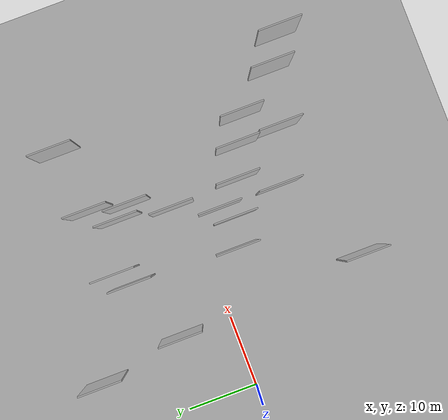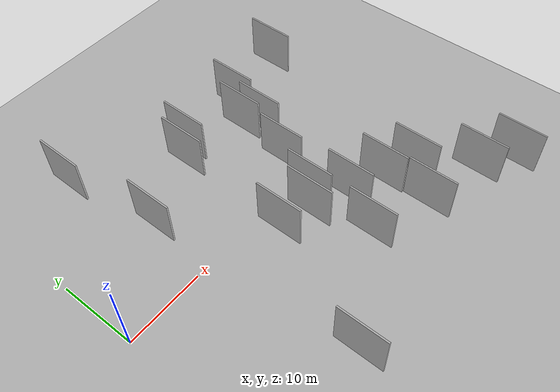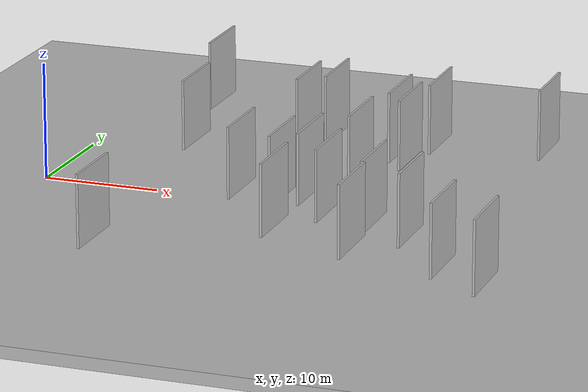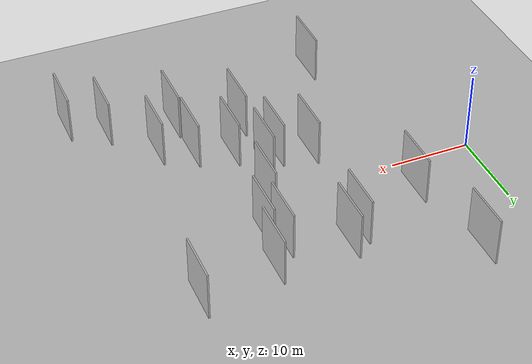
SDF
<?xml version="1.0" encoding="utf-8"?>

<sdf version="1.6">

   <world name="default">

      <gui fullscreen="0">

         <camera name="user_camera">

            <pose>-15 0 4.57585 0 0 0</pose>

            <view_controller>orbit</view_controller>

         </camera>

      </gui>

      <scene>

         <sky>

           <clouds>

             <speed>12</speed>

           </clouds>

         </sky>

         <ambient>0.4 0.4 0.4 1</ambient>

         <background>0.7 0.7 0.7 1</background>

         <shadows>1</shadows>

      </scene>

      <gravity>0 0 -9.8066</gravity>

      <magnetic_field>6e-06 2.3e-05 -4.2e-05</magnetic_field>

      <physics default="0" name="default_physics" type="ode">

         <ode>

            <solver>

               <type>quick</type>

               <iters>10</iters>

               <sor>1.0</sor>

               <use_dynamic_moi_rescaling>0</use_dynamic_moi_rescaling>

            </solver>

            <constraints>

               <cfm>0</cfm>

               <erp>0.2</erp>

               <contact_max_correcting_vel>100</contact_max_correcting_vel>

               <contact_surface_layer>0.001</contact_surface_layer>

            </constraints>

         </ode>

         <max_step_size>0.004</max_step_size>

         <real_time_factor>1</real_time_factor>

         <real_time_update_rate>250</real_time_update_rate>

      </physics>

      <light name="sun" type="directional">

         <cast_shadows>1</cast_shadows>

         <pose>0 0 10 0 0 0</pose>

         <diffuse>0.8 0.8 0.8 1</diffuse>

         <specular>0.2 0.2 0.2 1</specular>

         <attenuation>

            <range>1000</range>

            <constant>0.9</constant>

            <linear>0.01</linear>

            <quadratic>0.001</quadratic>

         </attenuation>

         <direction>-0.5 0.1 -0.9</direction>

      </light>

      <include>

         <name>ground_plane_1</name>

         <uri>model://HANNAS_ground_plane</uri>

         <pose>0 0 0  0 0 0</pose>

      </include>

      <include>

         <name>ground_plane_2</name>

         <uri>model://HANNAS_ground_plane</uri>

         <pose>100 0 0  0 0 0</pose>

      </include>

      <model name="HANNAS_wall_1">

         <static>1</static>

         <pose frame="">32.0203 -8.9348 2.5 0.000000 0.000000 1.570796</pose>

         <link name="link">

            <pose frame="">0 0 3.00 0 0 0</pose>

            <collision name="collision">

               <geometry>

                  <box>

                     <size>6.00 0.2 6.00</size>

                  </box>

               </geometry>

               <max_contacts>10</max_contacts>

               <surface>

                  <contact>

                     <ode/>

                  </contact>

                  <bounce/>

                  <friction>

                     <torsional>

                        <ode/>

                     </torsional>

                     <ode/>

                  </friction>

               </surface>

            </collision>

            <visual name="visual">

               <cast_shadows>0</cast_shadows>

               <geometry>

                  <box>

                     <size>6.00 0.2 6.00</size>

                  </box>

               </geometry>

               <material>

                  <script>

                     <uri>model://HANNAS_wall/materials/scripts</uri>

                     <uri>model://HANNAS_wall/materials/textures</uri>

                     <name>vrc/HANNAS_wall</name>

                  </script>

               </material>

            </visual>

            <self_collide>0</self_collide>

            <enable_wind>0</enable_wind>

            <kinematic>0</kinematic>

         </link>

      </model>

      <model name="HANNAS_wall_2">

         <static>1</static>

         <pose frame="">19.1158 -4.1282 2.5 0.000000 0.000000 1.570796</pose>

         <link name="link">

            <pose frame="">0 0 3.00 0 0 0</pose>

            <collision name="collision">

               <geometry>

                  <box>

                     <size>6.00 0.2 6.00</size>

                  </box>

               </geometry>

               <max_contacts>10</max_contacts>

               <surface>

                  <contact>

                     <ode/>

                  </contact>

                  <bounce/>

                  <friction>

                     <torsional>

                        <ode/>

                     </torsional>

                     <ode/>

                  </friction>

               </surface>

            </collision>

            <visual name="visual">

               <cast_shadows>0</cast_shadows>

               <geometry>

                  <box>

                     <size>6.00 0.2 6.00</size>

                  </box>

               </geometry>

               <material>

                  <script>

                     <uri>model://HANNAS_wall/materials/scripts</uri>

                     <uri>model://HANNAS_wall/materials/textures</uri>

                     <name>vrc/HANNAS_wall</name>

                  </script>

               </material>

            </visual>

            <self_collide>0</self_collide>

            <enable_wind>0</enable_wind>

            <kinematic>0</kinematic>

         </link>

      </model>

      <model name="HANNAS_wall_3">

         <static>1</static>

         <pose frame="">8.6810 18.6490 2.5 0.000000 0.000000 1.570796</pose>

         <link name="link">

            <pose frame="">0 0 3.00 0 0 0</pose>

            <collision name="collision">

               <geometry>

                  <box>

                     <size>6.00 0.2 6.00</size>

                  </box>

               </geometry>

               <max_contacts>10</max_contacts>

               <surface>

                  <contact>

                     <ode/>

                  </contact>

                  <bounce/>

                  <friction>

                     <torsional>

                        <ode/>

                     </torsional>

                     <ode/>

                  </friction>

               </surface>

            </collision>

            <visual name="visual">

               <cast_shadows>0</cast_shadows>

               <geometry>

                  <box>

                     <size>6.00 0.2 6.00</size>

                  </box>

               </geometry>

               <material>

                  <script>

                     <uri>model://HANNAS_wall/materials/scripts</uri>

                     <uri>model://HANNAS_wall/materials/textures</uri>

                     <name>vrc/HANNAS_wall</name>

                  </script>

               </material>

            </visual>

            <self_collide>0</self_collide>

            <enable_wind>0</enable_wind>

            <kinematic>0</kinematic>

         </link>

      </model>

      <model name="HANNAS_wall_4">

         <static>1</static>

         <pose frame="">44.3298 -19.4396 2.5 0.000000 0.000000 1.570796</pose>

         <link name="link">

            <pose frame="">0 0 3.00 0 0 0</pose>

            <collision name="collision">

               <geometry>

                  <box>

                     <size>6.00 0.2 6.00</size>

                  </box>

               </geometry>

               <max_contacts>10</max_contacts>

               <surface>

                  <contact>

                     <ode/>

                  </contact>

                  <bounce/>

                  <friction>

                     <torsional>

                        <ode/>

                     </torsional>

                     <ode/>

                  </friction>

               </surface>

            </collision>

            <visual name="visual">

               <cast_shadows>0</cast_shadows>

               <geometry>

                  <box>

                     <size>6.00 0.2 6.00</size>

                  </box>

               </geometry>

               <material>

                  <script>

                     <uri>model://HANNAS_wall/materials/scripts</uri>

                     <uri>model://HANNAS_wall/materials/textures</uri>

                     <name>vrc/HANNAS_wall</name>

                  </script>

               </material>

            </visual>

            <self_collide>0</self_collide>

            <enable_wind>0</enable_wind>

            <kinematic>0</kinematic>

         </link>

      </model>

      <model name="HANNAS_wall_5">

         <static>1</static>

         <pose frame="">24.9027 -12.1965 2.5 0.000000 0.000000 1.570796</pose>

         <link name="link">

            <pose frame="">0 0 3.00 0 0 0</pose>

            <collision name="collision">

               <geometry>

                  <box>

                     <size>6.00 0.2 6.00</size>

                  </box>

               </geometry>

               <max_contacts>10</max_contacts>

               <surface>

                  <contact>

                     <ode/>

                  </contact>

                  <bounce/>

                  <friction>

                     <torsional>

                        <ode/>

                     </torsional>

                     <ode/>

                  </friction>

               </surface>

            </collision>

            <visual name="visual">

               <cast_shadows>0</cast_shadows>

               <geometry>

                  <box>

                     <size>6.00 0.2 6.00</size>

                  </box>

               </geometry>

               <material>

                  <script>

                     <uri>model://HANNAS_wall/materials/scripts</uri>

                     <uri>model://HANNAS_wall/materials/textures</uri>

                     <name>vrc/HANNAS_wall</name>

                  </script>

               </material>

            </visual>

            <self_collide>0</self_collide>

            <enable_wind>0</enable_wind>

            <kinematic>0</kinematic>

         </link>

      </model>

      <model name="HANNAS_wall_6">

         <static>1</static>

         <pose frame="">39.6799 14.1153 2.5 0.000000 0.000000 1.570796</pose>

         <link name="link">

            <pose frame="">0 0 3.00 0 0 0</pose>

            <collision name="collision">

               <geometry>

                  <box>

                     <size>6.00 0.2 6.00</size>

                  </box>

               </geometry>

               <max_contacts>10</max_contacts>

               <surface>

                  <contact>

                     <ode/>

                  </contact>

                  <bounce/>

                  <friction>

                     <torsional>

                        <ode/>

                     </torsional>

                     <ode/>

                  </friction>

               </surface>

            </collision>

            <visual name="visual">

               <cast_shadows>0</cast_shadows>

               <geometry>

                  <box>

                     <size>6.00 0.2 6.00</size>

                  </box>

               </geometry>

               <material>

                  <script>

                     <uri>model://HANNAS_wall/materials/scripts</uri>

                     <uri>model://HANNAS_wall/materials/textures</uri>

                     <name>vrc/HANNAS_wall</name>

                  </script>

               </material>

            </visual>

            <self_collide>0</self_collide>

            <enable_wind>0</enable_wind>

            <kinematic>0</kinematic>

         </link>

      </model>

      <model name="HANNAS_wall_7">

         <static>1</static>

         <pose frame="">27.6948 -7.3217 2.5 0.000000 0.000000 1.570796</pose>

         <link name="link">

            <pose frame="">0 0 3.00 0 0 0</pose>

            <collision name="collision">

               <geometry>

                  <box>

                     <size>6.00 0.2 6.00</size>

                  </box>

               </geometry>

               <max_contacts>10</max_contacts>

               <surface>

                  <contact>

                     <ode/>

                  </contact>

                  <bounce/>

                  <friction>

                     <torsional>

                        <ode/>

                     </torsional>

                     <ode/>

                  </friction>

               </surface>

            </collision>

            <visual name="visual">

               <cast_shadows>0</cast_shadows>

               <geometry>

                  <box>

                     <size>6.00 0.2 6.00</size>

                  </box>

               </geometry>

               <material>

                  <script>

                     <uri>model://HANNAS_wall/materials/scripts</uri>

                     <uri>model://HANNAS_wall/materials/textures</uri>

                     <name>vrc/HANNAS_wall</name>

                  </script>

               </material>

            </visual>

            <self_collide>0</self_collide>

            <enable_wind>0</enable_wind>

            <kinematic>0</kinematic>

         </link>

      </model>

      <model name="HANNAS_wall_8">

         <static>1</static>

         <pose frame="">19.6304 10.5923 2.5 0.000000 0.000000 1.570796</pose>

         <link name="link">

            <pose frame="">0 0 3.00 0 0 0</pose>

            <collision name="collision">

               <geometry>

                  <box>

                     <size>6.00 0.2 6.00</size>

                  </box>

               </geometry>

               <max_contacts>10</max_contacts>

               <surface>

                  <contact>

                     <ode/>

                  </contact>

                  <bounce/>

                  <friction>

                     <torsional>

                        <ode/>

                     </torsional>

                     <ode/>

                  </friction>

               </surface>

            </collision>

            <visual name="visual">

               <cast_shadows>0</cast_shadows>

               <geometry>

                  <box>

                     <size>6.00 0.2 6.00</size>

                  </box>

               </geometry>

               <material>

                  <script>

                     <uri>model://HANNAS_wall/materials/scripts</uri>

                     <uri>model://HANNAS_wall/materials/textures</uri>

                     <name>vrc/HANNAS_wall</name>

                  </script>

               </material>

            </visual>

            <self_collide>0</self_collide>

            <enable_wind>0</enable_wind>

            <kinematic>0</kinematic>

         </link>

      </model>

      <model name="HANNAS_wall_9">

         <static>1</static>

         <pose frame="">32.2587 -14.9879 2.5 0.000000 0.000000 1.570796</pose>

         <link name="link">

            <pose frame="">0 0 3.00 0 0 0</pose>

            <collision name="collision">

               <geometry>

                  <box>

                     <size>6.00 0.2 6.00</size>

                  </box>

               </geometry>

               <max_contacts>10</max_contacts>

               <surface>

                  <contact>

                     <ode/>

                  </contact>

                  <bounce/>

                  <friction>

                     <torsional>

                        <ode/>

                     </torsional>

                     <ode/>

                  </friction>

               </surface>

            </collision>

            <visual name="visual">

               <cast_shadows>0</cast_shadows>

               <geometry>

                  <box>

                     <size>6.00 0.2 6.00</size>

                  </box>

               </geometry>

               <material>

                  <script>

                     <uri>model://HANNAS_wall/materials/scripts</uri>

                     <uri>model://HANNAS_wall/materials/textures</uri>

                     <name>vrc/HANNAS_wall</name>

                  </script>

               </material>

            </visual>

            <self_collide>0</self_collide>

            <enable_wind>0</enable_wind>

            <kinematic>0</kinematic>

         </link>

      </model>

      <model name="HANNAS_wall_10">

         <static>1</static>

         <pose frame="">29.6530 7.5066 2.5 0.000000 0.000000 1.570796</pose>

         <link name="link">

            <pose frame="">0 0 3.00 0 0 0</pose>

            <collision name="collision">

               <geometry>

                  <box>

                     <size>6.00 0.2 6.00</size>

                  </box>

               </geometry>

               <max_contacts>10</max_contacts>

               <surface>

                  <contact>

                     <ode/>

                  </contact>

                  <bounce/>

                  <friction>

                     <torsional>

                        <ode/>

                     </torsional>

                     <ode/>

                  </friction>

               </surface>

            </collision>

            <visual name="visual">

               <cast_shadows>0</cast_shadows>

               <geometry>

                  <box>

                     <size>6.00 0.2 6.00</size>

                  </box>

               </geometry>

               <material>

                  <script>

                     <uri>model://HANNAS_wall/materials/scripts</uri>

                     <uri>model://HANNAS_wall/materials/textures</uri>

                     <name>vrc/HANNAS_wall</name>

                  </script>

               </material>

            </visual>

            <self_collide>0</self_collide>

            <enable_wind>0</enable_wind>

            <kinematic>0</kinematic>

         </link>

      </model>

      <model name="HANNAS_wall_11">

         <static>1</static>

         <pose frame="">35.6921 -10.9146 2.5 0.000000 0.000000 1.570796</pose>

         <link name="link">

            <pose frame="">0 0 3.00 0 0 0</pose>

            <collision name="collision">

               <geometry>

                  <box>

                     <size>6.00 0.2 6.00</size>

                  </box>

               </geometry>

               <max_contacts>10</max_contacts>

               <surface>

                  <contact>

                     <ode/>

                  </contact>

                  <bounce/>

                  <friction>

                     <torsional>

                        <ode/>

                     </torsional>

                     <ode/>

                  </friction>

               </surface>

            </collision>

            <visual name="visual">

               <cast_shadows>0</cast_shadows>

               <geometry>

                  <box>

                     <size>6.00 0.2 6.00</size>

                  </box>

               </geometry>

               <material>

                  <script>

                     <uri>model://HANNAS_wall/materials/scripts</uri>

                     <uri>model://HANNAS_wall/materials/textures</uri>

                     <name>vrc/HANNAS_wall</name>

                  </script>

               </material>

            </visual>

            <self_collide>0</self_collide>

            <enable_wind>0</enable_wind>

            <kinematic>0</kinematic>

         </link>

      </model>

      <model name="HANNAS_wall_12">

         <static>1</static>

         <pose frame="">12.6446 -19.3994 2.5 0.000000 0.000000 1.570796</pose>

         <link name="link">

            <pose frame="">0 0 3.00 0 0 0</pose>

            <collision name="collision">

               <geometry>

                  <box>

                     <size>6.00 0.2 6.00</size>

                  </box>

               </geometry>

               <max_contacts>10</max_contacts>

               <surface>

                  <contact>

                     <ode/>

                  </contact>

                  <bounce/>

                  <friction>

                     <torsional>

                        <ode/>

                     </torsional>

                     <ode/>

                  </friction>

               </surface>

            </collision>

            <visual name="visual">

               <cast_shadows>0</cast_shadows>

               <geometry>

                  <box>

                     <size>6.00 0.2 6.00</size>

                  </box>

               </geometry>

               <material>

                  <script>

                     <uri>model://HANNAS_wall/materials/scripts</uri>

                     <uri>model://HANNAS_wall/materials/textures</uri>

                     <name>vrc/HANNAS_wall</name>

                  </script>

               </material>

            </visual>

            <self_collide>0</self_collide>

            <enable_wind>0</enable_wind>

            <kinematic>0</kinematic>

         </link>

      </model>

      <model name="HANNAS_wall_13">

         <static>1</static>

         <pose frame="">28.1692 9.3109 2.5 0.000000 0.000000 1.570796</pose>

         <link name="link">

            <pose frame="">0 0 3.00 0 0 0</pose>

            <collision name="collision">

               <geometry>

                  <box>

                     <size>6.00 0.2 6.00</size>

                  </box>

               </geometry>

               <max_contacts>10</max_contacts>

               <surface>

                  <contact>

                     <ode/>

                  </contact>

                  <bounce/>

                  <friction>

                     <torsional>

                        <ode/>

                     </torsional>

                     <ode/>

                  </friction>

               </surface>

            </collision>

            <visual name="visual">

               <cast_shadows>0</cast_shadows>

               <geometry>

                  <box>

                     <size>6.00 0.2 6.00</size>

                  </box>

               </geometry>

               <material>

                  <script>

                     <uri>model://HANNAS_wall/materials/scripts</uri>

                     <uri>model://HANNAS_wall/materials/textures</uri>

                     <name>vrc/HANNAS_wall</name>

                  </script>

               </material>

            </visual>

            <self_collide>0</self_collide>

            <enable_wind>0</enable_wind>

            <kinematic>0</kinematic>

         </link>

      </model>

      <model name="HANNAS_wall_14">

         <static>1</static>

         <pose frame="">40.1759 -16.8462 2.5 0.000000 0.000000 1.570796</pose>

         <link name="link">

            <pose frame="">0 0 3.00 0 0 0</pose>

            <collision name="collision">

               <geometry>

                  <box>

                     <size>6.00 0.2 6.00</size>

                  </box>

               </geometry>

               <max_contacts>10</max_contacts>

               <surface>

                  <contact>

                     <ode/>

                  </contact>

                  <bounce/>

                  <friction>

                     <torsional>

                        <ode/>

                     </torsional>

                     <ode/>

                  </friction>

               </surface>

            </collision>

            <visual name="visual">

               <cast_shadows>0</cast_shadows>

               <geometry>

                  <box>

                     <size>6.00 0.2 6.00</size>

                  </box>

               </geometry>

               <material>

                  <script>

                     <uri>model://HANNAS_wall/materials/scripts</uri>

                     <uri>model://HANNAS_wall/materials/textures</uri>

                     <name>vrc/HANNAS_wall</name>

                  </script>

               </material>

            </visual>

            <self_collide>0</self_collide>

            <enable_wind>0</enable_wind>

            <kinematic>0</kinematic>

         </link>

      </model>

      <model name="HANNAS_wall_15">

         <static>1</static>

         <pose frame="">21.6020 12.1916 2.5 0.000000 0.000000 1.570796</pose>

         <link name="link">

            <pose frame="">0 0 3.00 0 0 0</pose>

            <collision name="collision">

               <geometry>

                  <box>

                     <size>6.00 0.2 6.00</size>

                  </box>

               </geometry>

               <max_contacts>10</max_contacts>

               <surface>

                  <contact>

                     <ode/>

                  </contact>

                  <bounce/>

                  <friction>

                     <torsional>

                        <ode/>

                     </torsional>

                     <ode/>

                  </friction>

               </surface>

            </collision>

            <visual name="visual">

               <cast_shadows>0</cast_shadows>

               <geometry>

                  <box>

                     <size>6.00 0.2 6.00</size>

                  </box>

               </geometry>

               <material>

                  <script>

                     <uri>model://HANNAS_wall/materials/scripts</uri>

                     <uri>model://HANNAS_wall/materials/textures</uri>

                     <name>vrc/HANNAS_wall</name>

                  </script>

               </material>

            </visual>

            <self_collide>0</self_collide>

            <enable_wind>0</enable_wind>

            <kinematic>0</kinematic>

         </link>

      </model>

      <model name="HANNAS_wall_16">

         <static>1</static>

         <pose frame="">24.9113 -3.8003 2.5 0.000000 0.000000 1.570796</pose>

         <link name="link">

            <pose frame="">0 0 3.00 0 0 0</pose>

            <collision name="collision">

               <geometry>

                  <box>

                     <size>6.00 0.2 6.00</size>

                  </box>

               </geometry>

               <max_contacts>10</max_contacts>

               <surface>

                  <contact>

                     <ode/>

                  </contact>

                  <bounce/>

                  <friction>

                     <torsional>

                        <ode/>

                     </torsional>

                     <ode/>

                  </friction>

               </surface>

            </collision>

            <visual name="visual">

               <cast_shadows>0</cast_shadows>

               <geometry>

                  <box>

                     <size>6.00 0.2 6.00</size>

                  </box>

               </geometry>

               <material>

                  <script>

                     <uri>model://HANNAS_wall/materials/scripts</uri>

                     <uri>model://HANNAS_wall/materials/textures</uri>

                     <name>vrc/HANNAS_wall</name>

                  </script>

               </material>

            </visual>

            <self_collide>0</self_collide>

            <enable_wind>0</enable_wind>

            <kinematic>0</kinematic>

         </link>

      </model>

      <model name="HANNAS_wall_17">

         <static>1</static>

         <pose frame="">23.0249 -5.2571 2.5 0.000000 0.000000 1.570796</pose>

         <link name="link">

            <pose frame="">0 0 3.00 0 0 0</pose>

            <collision name="collision">

               <geometry>

                  <box>

                     <size>6.00 0.2 6.00</size>

                  </box>

               </geometry>

               <max_contacts>10</max_contacts>

               <surface>

                  <contact>

                     <ode/>

                  </contact>

                  <bounce/>

                  <friction>

                     <torsional>

                        <ode/>

                     </torsional>

                     <ode/>

                  </friction>

               </surface>

            </collision>

            <visual name="visual">

               <cast_shadows>0</cast_shadows>

               <geometry>

                  <box>

                     <size>6.00 0.2 6.00</size>

                  </box>

               </geometry>

               <material>

                  <script>

                     <uri>model://HANNAS_wall/materials/scripts</uri>

                     <uri>model://HANNAS_wall/materials/textures</uri>

                     <name>vrc/HANNAS_wall</name>

                  </script>

               </material>

            </visual>

            <self_collide>0</self_collide>

            <enable_wind>0</enable_wind>

            <kinematic>0</kinematic>

         </link>

      </model>

      <model name="HANNAS_wall_18">

         <static>1</static>

         <pose frame="">27.1675 2.0941 2.5 0.000000 0.000000 1.570796</pose>

         <link name="link">

            <pose frame="">0 0 3.00 0 0 0</pose>

            <collision name="collision">

               <geometry>

                  <box>

                     <size>6.00 0.2 6.00</size>

                  </box>

               </geometry>

               <max_contacts>10</max_contacts>

               <surface>

                  <contact>

                     <ode/>

                  </contact>

                  <bounce/>

                  <friction>

                     <torsional>

                        <ode/>

                     </torsional>

                     <ode/>

                  </friction>

               </surface>

            </collision>

            <visual name="visual">

               <cast_shadows>0</cast_shadows>

               <geometry>

                  <box>

                     <size>6.00 0.2 6.00</size>

                  </box>

               </geometry>

               <material>

                  <script>

                     <uri>model://HANNAS_wall/materials/scripts</uri>

                     <uri>model://HANNAS_wall/materials/textures</uri>

                     <name>vrc/HANNAS_wall</name>

                  </script>

               </material>

            </visual>

            <self_collide>0</self_collide>

            <enable_wind>0</enable_wind>

            <kinematic>0</kinematic>

         </link>

      </model>

      <model name="HANNAS_wall_19">

         <static>1</static>

         <pose frame="">10.8528 6.9164 2.5 0.000000 0.000000 1.570796</pose>

         <link name="link">

            <pose frame="">0 0 3.00 0 0 0</pose>

            <collision name="collision">

               <geometry>

                  <box>

                     <size>6.00 0.2 6.00</size>

                  </box>

               </geometry>

               <max_contacts>10</max_contacts>

               <surface>

                  <contact>

                     <ode/>

                  </contact>

                  <bounce/>

                  <friction>

                     <torsional>

                        <ode/>

                     </torsional>

                     <ode/>

                  </friction>

               </surface>

            </collision>

            <visual name="visual">

               <cast_shadows>0</cast_shadows>

               <geometry>

                  <box>

                     <size>6.00 0.2 6.00</size>

                  </box>

               </geometry>

               <material>

                  <script>

                     <uri>model://HANNAS_wall/materials/scripts</uri>

                     <uri>model://HANNAS_wall/materials/textures</uri>

                     <name>vrc/HANNAS_wall</name>

                  </script>

               </material>

            </visual>

            <self_collide>0</self_collide>

            <enable_wind>0</enable_wind>

            <kinematic>0</kinematic>

         </link>

      </model>

      <model name="HANNAS_wall_20">

         <static>1</static>

         <pose frame="">30.6229 12.6520 2.5 0.000000 0.000000 1.570796</pose>

         <link name="link">

            <pose frame="">0 0 3.00 0 0 0</pose>

            <collision name="collision">

               <geometry>

                  <box>

                     <size>6.00 0.2 6.00</size>

                  </box>

               </geometry>

               <max_contacts>10</max_contacts>

               <surface>

                  <contact>

                     <ode/>

                  </contact>

                  <bounce/>

                  <friction>

                     <torsional>

                        <ode/>

                     </torsional>

                     <ode/>

                  </friction>

               </surface>

            </collision>

            <visual name="visual">

               <cast_shadows>0</cast_shadows>

               <geometry>

                  <box>

                     <size>6.00 0.2 6.00</size>

                  </box>

               </geometry>

               <material>

                  <script>

                     <uri>model://HANNAS_wall/materials/scripts</uri>

                     <uri>model://HANNAS_wall/materials/textures</uri>

                     <name>vrc/HANNAS_wall</name>

                  </script>

               </material>

            </visual>

            <self_collide>0</self_collide>

            <enable_wind>0</enable_wind>

            <kinematic>0</kinematic>

         </link>

      </model>

   </world>

</sdf>

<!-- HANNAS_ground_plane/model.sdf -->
<sdf version="1.4">
<model name="HANNAS_ground_plane">
  <static>true</static>
    <link name="link">
      <collision name="collision">
        <geometry>
          <plane>
            <normal>0 0 1</normal>
            <size>1000 1000</size>
          </plane>
        </geometry>
        <surface>
          <friction>
            <ode>
              <mu>100</mu>
              <mu2>50</mu2>
            </ode>
          </friction>
        </surface>
      </collision>
      <visual name="visual">
        <cast_shadows>false</cast_shadows>
        <geometry>
          <plane>
            <normal>0 0 1</normal>
            <size>1000 1000</size>
          </plane>
        </geometry>
        <material>
          <script>
            <uri>model://HANNAS_ground_plane/materials/scripts/HANNAS_ground_plane.material</uri>
	    <uri>model://HANNAS_ground_plane/materials/textures</uri>
            <name>HANNASGroundPlane/Image</name>
          </script>
        </material>
      </visual>
    </link>
  </model>
</sdf>
